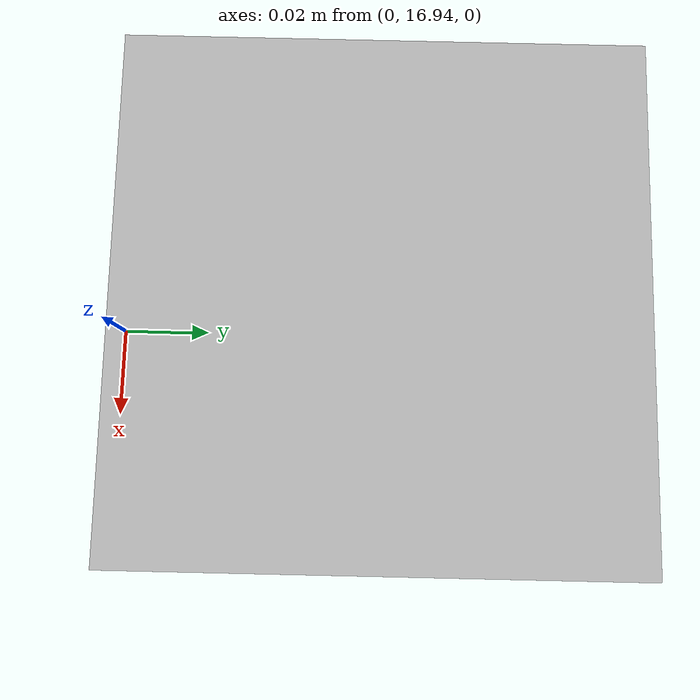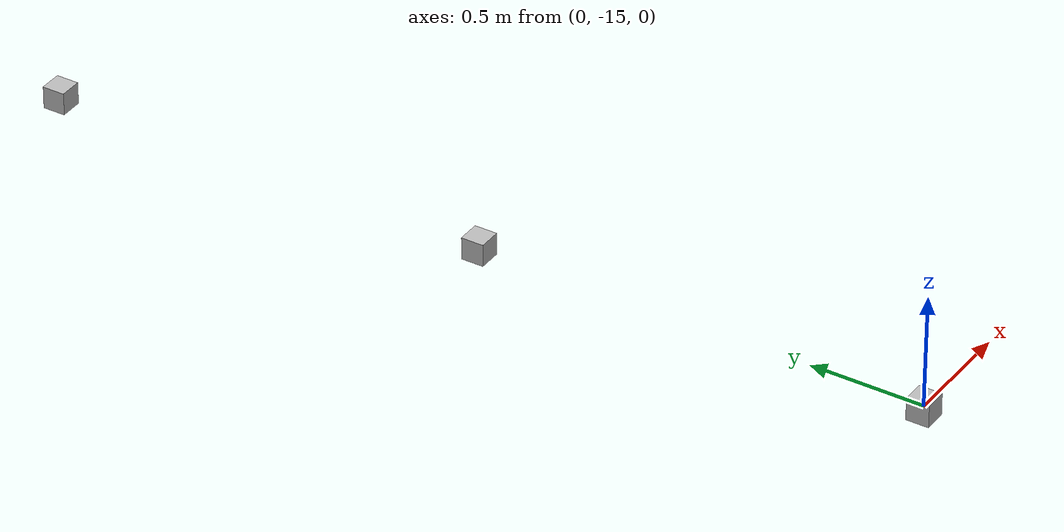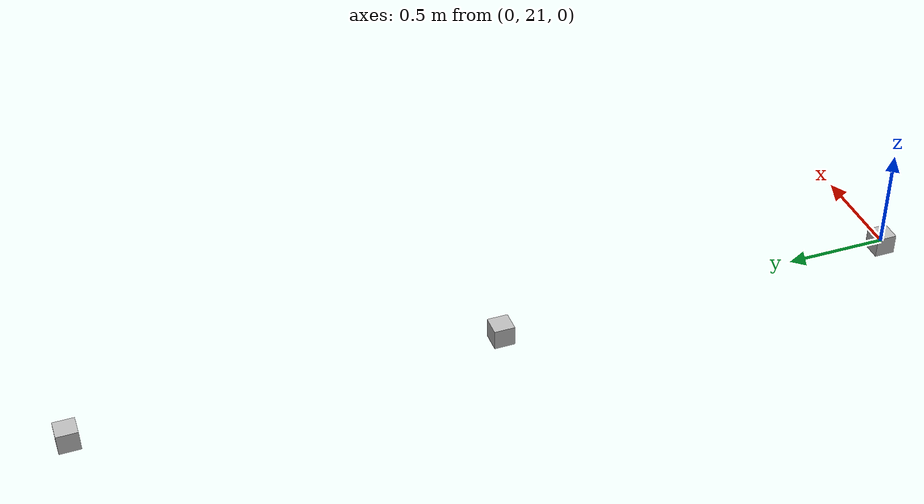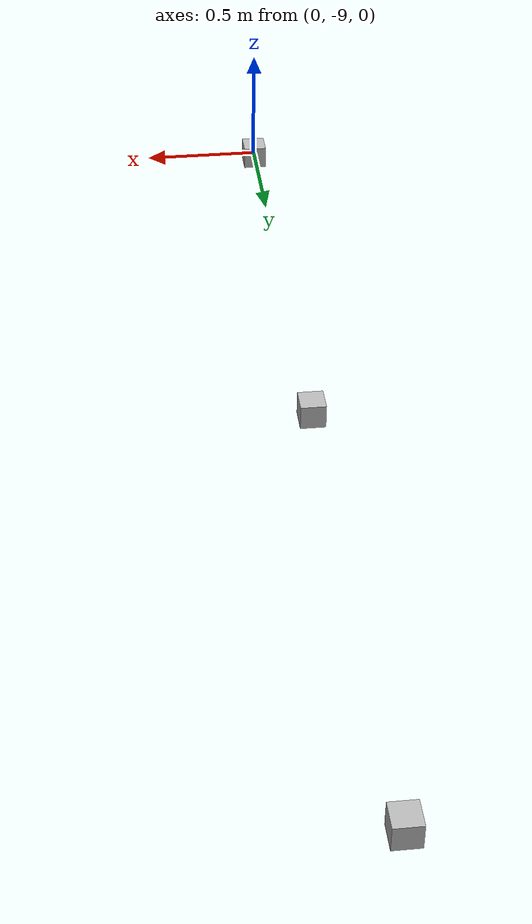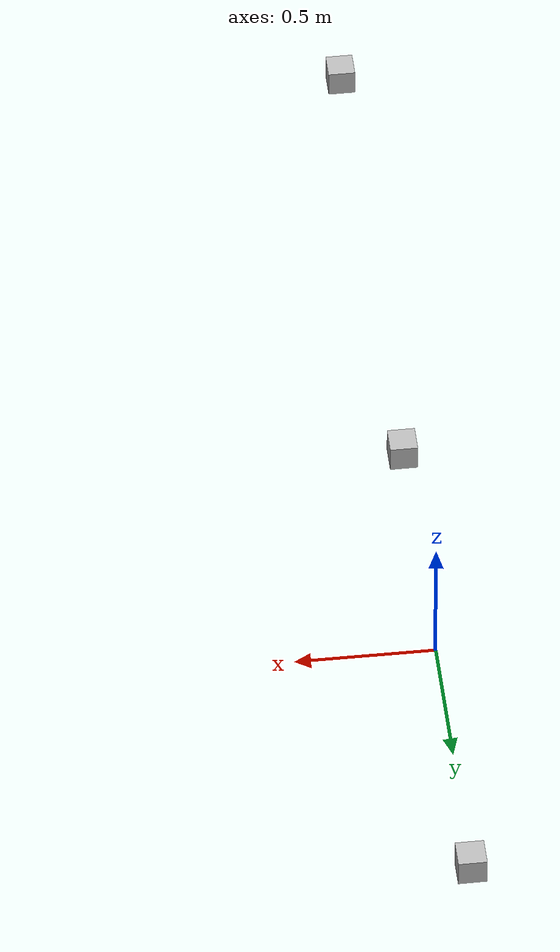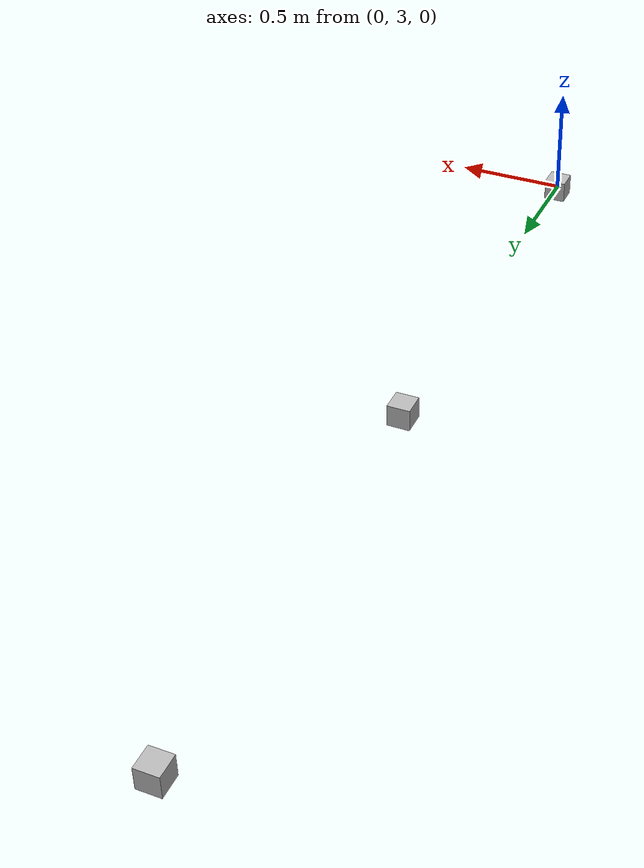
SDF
<sdf version="1.10">
 <world name="Forschungsprojekt_world">
  <physics name="default_physics" type="dart">
   <max_step_size>0.001</max_step_size>
   <real_time_factor>1</real_time_factor>
   <real_time_update_rate>1000</real_time_update_rate>
  </physics>
  <plugin filename="gz-sim-physics-system" name="gz::sim::systems::Physics"/>
  <plugin filename="gz-sim-scene-broadcaster-system" name="gz::sim::systems::SceneBroadcaster"/>
  <plugin filename="gz-sim-sensors-system" name="gz::sim::systems::Sensors">
   <render_engine>ogre2</render_engine>
  </plugin>
  <plugin filename="gz-sim-user-commands-system" name="gz::sim::systems::UserCommands"/>
  <plugin filename="gz-sim-contact-system" name="gz::sim::systems::Contact"/>
  <light type="directional" name="sun">
   <cast_shadows>0</cast_shadows>
   <pose>0 0 10 0 0 0</pose>
   <diffuse>0.8 0.8 0.8 1</diffuse>
   <specular>0.2 0.2 0.2 1</specular>
   <attenuation>
    <range>1000</range>
    <constant>0.9</constant>
    <linear>0.01</linear>
    <quadratic>0.001</quadratic>
   </attenuation>
   <direction>1  0 -0.7</direction>
  </light>
  <include><uri>model://Cube_H_white</uri><pose>0.0 -29.0 0 0 0 0</pose></include>
  <include><uri>model://Cube_H_pink</uri><pose>0.0 -27.0 0 0 0 0</pose></include>
  <include><uri>model://Cube_Hash_pink</uri><pose>0.0 -25.0 0 0 0 0</pose></include>
  <include><uri>model://Cube_plain_green</uri><pose>0.0 -23.0 0 0 0 0</pose></include>
  <include><uri>model://Cube_O_green</uri><pose>0.0 -21.0 0 0 0 0</pose></include>
  <include><uri>model://Cube_O_red</uri><pose>0.0 -19.0 0 0 0 0</pose></include>
  <include><uri>model://Cube_O_white</uri><pose>0.0 -17.0 0 0 0 0</pose></include>
  <include><uri>model://Cube_H_blue</uri><pose>0.0 -15.0 0 0 0 0</pose></include>
  <include><uri>model://Cube_O_blue</uri><pose>0.0 -13.0 0 0 0 0</pose></include>
  <include><uri>model://Cube_H_red</uri><pose>0.0 -11.0 0 0 0 0</pose></include>
  <include><uri>model://Cube_A_blue</uri><pose>0.0 -9.0 0 0 0 0</pose></include>
  <include><uri>model://Cube_H_green</uri><pose>0.0 -7.0 0 0 0 0</pose></include>
  <include><uri>model://Cube_plain_pink</uri><pose>0.0 -5.0 0 0 0 0</pose></include>
  <include><uri>model://Cube_A_red</uri><pose>0.0 -3.0 0 0 0 0</pose></include>
  <include><uri>model://Cube_A_green</uri><pose>0.0 -1.0 0 0 0 0</pose></include>
  <include><uri>model://Cube_X_white</uri><pose>0.0 1.0 0 0 0 0</pose></include>
  <include><uri>model://Cube_X_red</uri><pose>0.0 3.0 0 0 0 0</pose></include>
  <include><uri>model://Cube_Hash_green</uri><pose>0.0 5.0 0 0 0 0</pose></include>
  <include><uri>model://Cube_X_green</uri><pose>0.0 7.0 0 0 0 0</pose></include>
  <include><uri>model://Cube_A_pink</uri><pose>0.0 9.0 0 0 0 0</pose></include>
  <include><uri>model://Cube_X_pink</uri><pose>0.0 11.0 0 0 0 0</pose></include>
  <include><uri>model://Cube_plain_white</uri><pose>0.0 13.0 0 0 0 0</pose></include>
  <include><uri>model://Cube_Hash_red</uri><pose>0.0 15.0 0 0 0 0</pose></include>
  <include><uri>model://Cube_A_white</uri><pose>0.0 17.0 0 0 0 0</pose></include>
  <include><uri>model://Cube_X_blue</uri><pose>0.0 19.0 0 0 0 0</pose></include>
  <include><uri>model://Cube_plain_red</uri><pose>0.0 21.0 0 0 0 0</pose></include>
  <include><uri>model://Cube_Hash_white</uri><pose>0.0 23.0 0 0 0 0</pose></include>
  <include><uri>model://Cube_Hash_blue</uri><pose>0.0 25.0 0 0 0 0</pose></include>
  <include><uri>model://Cube_plain_blue</uri><pose>0.0 27.0 0 0 0 0</pose></include>
  <include><uri>model://Cube_O_pink</uri><pose>0.0 29.0 0 0 0 0</pose></include>
  <include><uri>model://Cylinder_H_white</uri><pose>0.0 31.0 0 0 0 0</pose></include>
  <include><uri>model://Cylinder_H_pink</uri><pose>0.0 33.0 0 0 0 0</pose></include>
  <include><uri>model://Cylinder_Hash_pink</uri><pose>0.0 35.0 0 0 0 0</pose></include>
  <include><uri>model://Cylinder_plain_green</uri><pose>0.0 37.0 0 0 0 0</pose></include>
  <include><uri>model://Cylinder_O_green</uri><pose>0.0 39.0 0 0 0 0</pose></include>
  <include><uri>model://Cylinder_O_red</uri><pose>0.0 41.0 0 0 0 0</pose></include>
  <include><uri>model://Cylinder_O_white</uri><pose>0.0 43.0 0 0 0 0</pose></include>
  <include><uri>model://Cylinder_H_blue</uri><pose>0.0 45.0 0 0 0 0</pose></include>
  <include><uri>model://Cylinder_O_blue</uri><pose>0.0 47.0 0 0 0 0</pose></include>
  <include><uri>model://Cylinder_H_red</uri><pose>0.0 49.0 0 0 0 0</pose></include>
  <include><uri>model://Cylinder_A_blue</uri><pose>0.0 51.0 0 0 0 0</pose></include>
  <include><uri>model://Cylinder_H_green</uri><pose>0.0 53.0 0 0 0 0</pose></include>
  <include><uri>model://Cylinder_plain_pink</uri><pose>0.0 55.0 0 0 0 0</pose></include>
  <include><uri>model://Cylinder_A_red</uri><pose>0.0 57.0 0 0 0 0</pose></include>
  <include><uri>model://Cylinder_A_green</uri><pose>0.0 59.0 0 0 0 0</pose></include>
  <include><uri>model://Cylinder_X_white</uri><pose>0.0 61.0 0 0 0 0</pose></include>
  <include><uri>model://Cylinder_X_red</uri><pose>0.0 63.0 0 0 0 0</pose></include>
  <include><uri>model://Cylinder_Hash_green</uri><pose>0.0 65.0 0 0 0 0</pose></include>
  <include><uri>model://Cylinder_X_green</uri><pose>0.0 67.0 0 0 0 0</pose></include>
  <include><uri>model://Cylinder_A_pink</uri><pose>0.0 69.0 0 0 0 0</pose></include>
  <include><uri>model://Cylinder_X_pink</uri><pose>0.0 71.0 0 0 0 0</pose></include>
  <include><uri>model://Cylinder_plain_white</uri><pose>0.0 73.0 0 0 0 0</pose></include>
  <include><uri>model://Cylinder_Hash_red</uri><pose>0.0 75.0 0 0 0 0</pose></include>
  <include><uri>model://Cylinder_A_white</uri><pose>0.0 77.0 0 0 0 0</pose></include>
  <include><uri>model://Cylinder_X_blue</uri><pose>0.0 79.0 0 0 0 0</pose></include>
  <include><uri>model://Cylinder_plain_red</uri><pose>0.0 81.0 0 0 0 0</pose></include>
  <include><uri>model://Cylinder_Hash_white</uri><pose>0.0 83.0 0 0 0 0</pose></include>
  <include><uri>model://Cylinder_Hash_blue</uri><pose>0.0 85.0 0 0 0 0</pose></include>
  <include><uri>model://Cylinder_plain_blue</uri><pose>0.0 87.0 0 0 0 0</pose></include>
  <include><uri>model://Cylinder_O_pink</uri><pose>0.0 89.0 0 0 0 0</pose></include>
 </world>
</sdf>

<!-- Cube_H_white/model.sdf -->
<sdf version="1.10">
  <model name="Cube_H_white">
    <static>true</static>
    <link name="link">
      <collision name="collider">
        <geometry>
          <box> <size>0.1 0.1 0.1</size> </box>
        </geometry>
      </collision>

      <pose>0 0 0.00 -3.14 0 -3.14</pose>
      <visual name="visual">
        <geometry>
          <mesh>
            <uri>model://Cube_H_white/Cube.obj</uri>
            <scale>0.05 0.05 0.05</scale>
          </mesh>
        </geometry>
      </visual>
    </link>
  </model>
</sdf>

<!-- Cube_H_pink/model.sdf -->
<sdf version="1.10">
  <model name="Cube_H_pink">
    <static>true</static>
    <link name="link">
      <collision name="collider">
        <geometry>
          <box> <size>0.1 0.1 0.1</size> </box>
        </geometry>
      </collision>

      <pose>0 0 0.00 -3.14 0 -3.14</pose>
      <visual name="visual">
        <geometry>
          <mesh>
            <uri>model://Cube_H_pink/Cube.obj</uri>
            <scale>0.05 0.05 0.05</scale>
          </mesh>
        </geometry>
      </visual>
    </link>
  </model>
</sdf>

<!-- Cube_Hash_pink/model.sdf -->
<sdf version="1.10">
  <model name="Cube_Hash_pink">
    <static>true</static>
    <link name="link">
      <collision name="collider">
        <geometry>
          <box> <size>0.1 0.1 0.1</size> </box>
        </geometry>
      </collision>

      <pose>0 0 0.00 -3.14 0 -3.14</pose>
      <visual name="visual">
        <geometry>
          <mesh>
            <uri>model://Cube_Hash_pink/Cube.obj</uri>
            <scale>0.05 0.05 0.05</scale>
          </mesh>
        </geometry>
      </visual>
    </link>
  </model>
</sdf>

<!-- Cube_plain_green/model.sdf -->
<sdf version="1.10">
  <model name="Cube_plain_green">
    <static>true</static>
    <link name="link">
      <collision name="collider">
        <geometry>
          <box> <size>0.1 0.1 0.1</size> </box>
        </geometry>
      </collision>

      <pose>0 0 0.00 -3.14 0 -3.14</pose>
      <visual name="visual">
        <geometry>
          <mesh>
            <uri>model://Cube_plain_green/Cube.obj</uri>
            <scale>0.05 0.05 0.05</scale>
          </mesh>
        </geometry>
      </visual>
    </link>
  </model>
</sdf>

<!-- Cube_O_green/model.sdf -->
<sdf version="1.10">
  <model name="Cube_O_green">
    <static>true</static>
    <link name="link">
      <collision name="collider">
        <geometry>
          <box> <size>0.1 0.1 0.1</size> </box>
        </geometry>
      </collision>

      <pose>0 0 0.00 -3.14 0 -3.14</pose>
      <visual name="visual">
        <geometry>
          <mesh>
            <uri>model://Cube_O_green/Cube.obj</uri>
            <scale>0.05 0.05 0.05</scale>
          </mesh>
        </geometry>
      </visual>
    </link>
  </model>
</sdf>

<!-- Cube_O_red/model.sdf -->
<sdf version="1.10">
  <model name="Cube_O_red">
    <static>true</static>
    <link name="link">
      <collision name="collider">
        <geometry>
          <box> <size>0.1 0.1 0.1</size> </box>
        </geometry>
      </collision>

      <pose>0 0 0.00 -3.14 0 -3.14</pose>
      <visual name="visual">
        <geometry>
          <mesh>
            <uri>model://Cube_O_red/Cube.obj</uri>
            <scale>0.05 0.05 0.05</scale>
          </mesh>
        </geometry>
      </visual>
    </link>
  </model>
</sdf>

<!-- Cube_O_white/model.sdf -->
<sdf version="1.10">
  <model name="Cube_O_white">
    <static>true</static>
    <link name="link">
      <collision name="collider">
        <geometry>
          <box> <size>0.1 0.1 0.1</size> </box>
        </geometry>
      </collision>

      <pose>0 0 0.00 -3.14 0 -3.14</pose>
      <visual name="visual">
        <geometry>
          <mesh>
            <uri>model://Cube_O_white/Cube.obj</uri>
            <scale>0.05 0.05 0.05</scale>
          </mesh>
        </geometry>
      </visual>
    </link>
  </model>
</sdf>

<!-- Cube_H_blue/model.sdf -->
<sdf version="1.10">
  <model name="Cube_H_blue">
    <static>true</static>
    <link name="link">
      <collision name="collider">
        <geometry>
          <box> <size>0.1 0.1 0.1</size> </box>
        </geometry>
      </collision>

      <pose>0 0 0.00 -3.14 0 -3.14</pose>
      <visual name="visual">
        <geometry>
          <mesh>
            <uri>model://Cube_H_blue/Cube.obj</uri>
            <scale>0.05 0.05 0.05</scale>
          </mesh>
        </geometry>
      </visual>
    </link>
  </model>
</sdf>

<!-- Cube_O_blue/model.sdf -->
<sdf version="1.10">
  <model name="Cube_O_blue">
    <static>true</static>
    <link name="link">
      <collision name="collider">
        <geometry>
          <box> <size>0.1 0.1 0.1</size> </box>
        </geometry>
      </collision>

      <pose>0 0 0.00 -3.14 0 -3.14</pose>
      <visual name="visual">
        <geometry>
          <mesh>
            <uri>model://Cube_O_blue/Cube.obj</uri>
            <scale>0.05 0.05 0.05</scale>
          </mesh>
        </geometry>
      </visual>
    </link>
  </model>
</sdf>

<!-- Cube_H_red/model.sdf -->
<sdf version="1.10">
  <model name="Cube_H_red">
    <static>true</static>
    <link name="link">
      <collision name="collider">
        <geometry>
          <box> <size>0.1 0.1 0.1</size> </box>
        </geometry>
      </collision>

      <pose>0 0 0.00 -3.14 0 -3.14</pose>
      <visual name="visual">
        <geometry>
          <mesh>
            <uri>model://Cube_H_red/Cube.obj</uri>
            <scale>0.05 0.05 0.05</scale>
          </mesh>
        </geometry>
      </visual>
    </link>
  </model>
</sdf>

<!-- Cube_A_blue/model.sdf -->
<sdf version="1.10">
  <model name="Cube_A_blue">
    <static>true</static>
    <link name="link">
      <collision name="collider">
        <geometry>
          <box> <size>0.1 0.1 0.1</size> </box>
        </geometry>
      </collision>

      <pose>0 0 0.00 -3.14 0 -3.14</pose>
      <visual name="visual">
        <geometry>
          <mesh>
            <uri>model://Cube_A_blue/Cube.obj</uri>
            <scale>0.05 0.05 0.05</scale>
          </mesh>
        </geometry>
      </visual>
    </link>
  </model>
</sdf>

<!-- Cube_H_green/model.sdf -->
<sdf version="1.10">
  <model name="Cube_H_green">
    <static>true</static>
    <link name="link">
      <collision name="collider">
        <geometry>
          <box> <size>0.1 0.1 0.1</size> </box>
        </geometry>
      </collision>

      <pose>0 0 0.00 -3.14 0 -3.14</pose>
      <visual name="visual">
        <geometry>
          <mesh>
            <uri>model://Cube_H_green/Cube.obj</uri>
            <scale>0.05 0.05 0.05</scale>
          </mesh>
        </geometry>
      </visual>
    </link>
  </model>
</sdf>

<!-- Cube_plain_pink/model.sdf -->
<sdf version="1.10">
  <model name="Cube_plain_pink">
    <static>true</static>
    <link name="link">
      <collision name="collider">
        <geometry>
          <box> <size>0.1 0.1 0.1</size> </box>
        </geometry>
      </collision>

      <pose>0 0 0.00 -3.14 0 -3.14</pose>
      <visual name="visual">
        <geometry>
          <mesh>
            <uri>model://Cube_plain_pink/Cube.obj</uri>
            <scale>0.05 0.05 0.05</scale>
          </mesh>
        </geometry>
      </visual>
    </link>
  </model>
</sdf>

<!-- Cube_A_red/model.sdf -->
<sdf version="1.10">
  <model name="Cube_A_red">
    <static>true</static>
    <link name="link">
      <collision name="collider">
        <geometry>
          <box> <size>0.1 0.1 0.1</size> </box>
        </geometry>
      </collision>

      <pose>0 0 0.00 -3.14 0 -3.14</pose>
      <visual name="visual">
        <geometry>
          <mesh>
            <uri>model://Cube_A_red/Cube.obj</uri>
            <scale>0.05 0.05 0.05</scale>
          </mesh>
        </geometry>
      </visual>
    </link>
  </model>
</sdf>

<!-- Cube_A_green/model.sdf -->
<sdf version="1.10">
  <model name="Cube_A_green">
    <static>true</static>
    <link name="link">
      <collision name="collider">
        <geometry>
          <box> <size>0.1 0.1 0.1</size> </box>
        </geometry>
      </collision>

      <pose>0 0 0.00 -3.14 0 -3.14</pose>
      <visual name="visual">
        <geometry>
          <mesh>
            <uri>model://Cube_A_green/Cube.obj</uri>
            <scale>0.05 0.05 0.05</scale>
          </mesh>
        </geometry>
      </visual>
    </link>
  </model>
</sdf>

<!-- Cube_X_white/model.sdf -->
<sdf version="1.10">
  <model name="Cube_X_white">
    <static>true</static>
    <link name="link">
      <collision name="collider">
        <geometry>
          <box> <size>0.1 0.1 0.1</size> </box>
        </geometry>
      </collision>

      <pose>0 0 0.00 -3.14 0 -3.14</pose>
      <visual name="visual">
        <geometry>
          <mesh>
            <uri>model://Cube_X_white/Cube.obj</uri>
            <scale>0.05 0.05 0.05</scale>
          </mesh>
        </geometry>
      </visual>
    </link>
  </model>
</sdf>

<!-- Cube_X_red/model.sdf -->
<sdf version="1.10">
  <model name="Cube_X_red">
    <static>true</static>
    <link name="link">
      <collision name="collider">
        <geometry>
          <box> <size>0.1 0.1 0.1</size> </box>
        </geometry>
      </collision>

      <pose>0 0 0.00 -3.14 0 -3.14</pose>
      <visual name="visual">
        <geometry>
          <mesh>
            <uri>model://Cube_X_red/Cube.obj</uri>
            <scale>0.05 0.05 0.05</scale>
          </mesh>
        </geometry>
      </visual>
    </link>
  </model>
</sdf>

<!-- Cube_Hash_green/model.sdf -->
<sdf version="1.10">
  <model name="Cube_Hash_green">
    <static>true</static>
    <link name="link">
      <collision name="collider">
        <geometry>
          <box> <size>0.1 0.1 0.1</size> </box>
        </geometry>
      </collision>

      <pose>0 0 0.00 -3.14 0 -3.14</pose>
      <visual name="visual">
        <geometry>
          <mesh>
            <uri>model://Cube_Hash_green/Cube.obj</uri>
            <scale>0.05 0.05 0.05</scale>
          </mesh>
        </geometry>
      </visual>
    </link>
  </model>
</sdf>

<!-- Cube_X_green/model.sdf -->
<sdf version="1.10">
  <model name="Cube_X_green">
    <static>true</static>
    <link name="link">
      <collision name="collider">
        <geometry>
          <box> <size>0.1 0.1 0.1</size> </box>
        </geometry>
      </collision>

      <pose>0 0 0.00 -3.14 0 -3.14</pose>
      <visual name="visual">
        <geometry>
          <mesh>
            <uri>model://Cube_X_green/Cube.obj</uri>
            <scale>0.05 0.05 0.05</scale>
          </mesh>
        </geometry>
      </visual>
    </link>
  </model>
</sdf>

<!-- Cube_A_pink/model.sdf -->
<sdf version="1.10">
  <model name="Cube_A_pink">
    <static>true</static>
    <link name="link">
      <collision name="collider">
        <geometry>
          <box> <size>0.1 0.1 0.1</size> </box>
        </geometry>
      </collision>

      <pose>0 0 0.00 -3.14 0 -3.14</pose>
      <visual name="visual">
        <geometry>
          <mesh>
            <uri>model://Cube_A_pink/Cube.obj</uri>
            <scale>0.05 0.05 0.05</scale>
          </mesh>
        </geometry>
      </visual>
    </link>
  </model>
</sdf>

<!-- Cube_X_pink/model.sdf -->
<sdf version="1.10">
  <model name="Cube_X_pink">
    <static>true</static>
    <link name="link">
      <collision name="collider">
        <geometry>
          <box> <size>0.1 0.1 0.1</size> </box>
        </geometry>
      </collision>

      <pose>0 0 0.00 -3.14 0 -3.14</pose>
      <visual name="visual">
        <geometry>
          <mesh>
            <uri>model://Cube_X_pink/Cube.obj</uri>
            <scale>0.05 0.05 0.05</scale>
          </mesh>
        </geometry>
      </visual>
    </link>
  </model>
</sdf>

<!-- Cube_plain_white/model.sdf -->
<sdf version="1.10">
  <model name="Cube_plain_white">
    <static>true</static>
    <link name="link">
      <collision name="collider">
        <geometry>
          <box> <size>0.1 0.1 0.1</size> </box>
        </geometry>
      </collision>

      <pose>0 0 0.00 -3.14 0 -3.14</pose>
      <visual name="visual">
        <geometry>
          <mesh>
            <uri>model://Cube_plain_white/Cube.obj</uri>
            <scale>0.05 0.05 0.05</scale>
          </mesh>
        </geometry>
      </visual>
    </link>
  </model>
</sdf>

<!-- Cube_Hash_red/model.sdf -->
<sdf version="1.10">
  <model name="Cube_Hash_red">
    <static>true</static>
    <link name="link">
      <collision name="collider">
        <geometry>
          <box> <size>0.1 0.1 0.1</size> </box>
        </geometry>
      </collision>

      <pose>0 0 0.00 -3.14 0 -3.14</pose>
      <visual name="visual">
        <geometry>
          <mesh>
            <uri>model://Cube_Hash_red/Cube.obj</uri>
            <scale>0.05 0.05 0.05</scale>
          </mesh>
        </geometry>
      </visual>
    </link>
  </model>
</sdf>

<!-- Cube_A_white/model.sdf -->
<sdf version="1.10">
  <model name="Cube_A_white">
    <static>true</static>
    <link name="link">
      <collision name="collider">
        <geometry>
          <box> <size>0.1 0.1 0.1</size> </box>
        </geometry>
      </collision>

      <pose>0 0 0.00 -3.14 0 -3.14</pose>
      <visual name="visual">
        <geometry>
          <mesh>
            <uri>model://Cube_A_white/Cube.obj</uri>
            <scale>0.05 0.05 0.05</scale>
          </mesh>
        </geometry>
      </visual>
    </link>
  </model>
</sdf>

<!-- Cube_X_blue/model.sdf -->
<sdf version="1.10">
  <model name="Cube_X_blue">
    <static>true</static>
    <link name="link">
      <collision name="collider">
        <geometry>
          <box> <size>0.1 0.1 0.1</size> </box>
        </geometry>
      </collision>

      <pose>0 0 0.00 -3.14 0 -3.14</pose>
      <visual name="visual">
        <geometry>
          <mesh>
            <uri>model://Cube_X_blue/Cube.obj</uri>
            <scale>0.05 0.05 0.05</scale>
          </mesh>
        </geometry>
      </visual>
    </link>
  </model>
</sdf>

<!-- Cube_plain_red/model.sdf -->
<sdf version="1.10">
  <model name="Cube_plain_red">
    <static>true</static>
    <link name="link">
      <collision name="collider">
        <geometry>
          <box> <size>0.1 0.1 0.1</size> </box>
        </geometry>
      </collision>

      <pose>0 0 0.00 -3.14 0 -3.14</pose>
      <visual name="visual">
        <geometry>
          <mesh>
            <uri>model://Cube_plain_red/Cube.obj</uri>
            <scale>0.05 0.05 0.05</scale>
          </mesh>
        </geometry>
      </visual>
    </link>
  </model>
</sdf>

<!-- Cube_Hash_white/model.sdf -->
<sdf version="1.10">
  <model name="Cube_Hash_white">
    <static>true</static>
    <link name="link">
      <collision name="collider">
        <geometry>
          <box> <size>0.1 0.1 0.1</size> </box>
        </geometry>
      </collision>

      <pose>0 0 0.00 -3.14 0 -3.14</pose>
      <visual name="visual">
        <geometry>
          <mesh>
            <uri>model://Cube_Hash_white/Cube.obj</uri>
            <scale>0.05 0.05 0.05</scale>
          </mesh>
        </geometry>
      </visual>
    </link>
  </model>
</sdf>

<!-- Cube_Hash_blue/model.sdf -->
<sdf version="1.10">
  <model name="Cube_Hash_blue">
    <static>true</static>
    <link name="link">
      <collision name="collider">
        <geometry>
          <box> <size>0.1 0.1 0.1</size> </box>
        </geometry>
      </collision>

      <pose>0 0 0.00 -3.14 0 -3.14</pose>
      <visual name="visual">
        <geometry>
          <mesh>
            <uri>model://Cube_Hash_blue/Cube.obj</uri>
            <scale>0.05 0.05 0.05</scale>
          </mesh>
        </geometry>
      </visual>
    </link>
  </model>
</sdf>

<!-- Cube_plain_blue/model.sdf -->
<sdf version="1.10">
  <model name="Cube_plain_blue">
    <static>true</static>
    <link name="link">
      <collision name="collider">
        <geometry>
          <box> <size>0.1 0.1 0.1</size> </box>
        </geometry>
      </collision>

      <pose>0 0 0.00 -3.14 0 -3.14</pose>
      <visual name="visual">
        <geometry>
          <mesh>
            <uri>model://Cube_plain_blue/Cube.obj</uri>
            <scale>0.05 0.05 0.05</scale>
          </mesh>
        </geometry>
      </visual>
    </link>
  </model>
</sdf>

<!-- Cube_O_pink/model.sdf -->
<sdf version="1.10">
  <model name="Cube_O_pink">
    <static>true</static>
    <link name="link">
      <collision name="collider">
        <geometry>
          <box> <size>0.1 0.1 0.1</size> </box>
        </geometry>
      </collision>

      <pose>0 0 0.00 -3.14 0 -3.14</pose>
      <visual name="visual">
        <geometry>
          <mesh>
            <uri>model://Cube_O_pink/Cube.obj</uri>
            <scale>0.05 0.05 0.05</scale>
          </mesh>
        </geometry>
      </visual>
    </link>
  </model>
</sdf>

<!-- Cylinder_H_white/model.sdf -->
<sdf version="1.10">
  <model name="Cylinder_H_white">
    <static>true</static>
    <link name="link">
      <collision name="collider">
        <geometry>
          <box> <size>0.1 0.1 0.1</size> </box>
        </geometry>
      </collision>

      <pose>0 0 -0.01 -1.57 0 0</pose>
      <visual name="visual">
        <geometry>
          <mesh>
            <uri>model://Cylinder_H_white/Cylinder.obj</uri>
            <scale>0.05 0.05 0.05</scale>
          </mesh>
        </geometry>
      </visual>
    </link>
  </model>
</sdf>

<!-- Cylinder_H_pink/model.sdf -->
<sdf version="1.10">
  <model name="Cylinder_H_pink">
    <static>true</static>
    <link name="link">
      <collision name="collider">
        <geometry>
          <box> <size>0.1 0.1 0.1</size> </box>
        </geometry>
      </collision>

      <pose>0 0 -0.01 -1.57 0 0</pose>
      <visual name="visual">
        <geometry>
          <mesh>
            <uri>model://Cylinder_H_pink/Cylinder.obj</uri>
            <scale>0.05 0.05 0.05</scale>
          </mesh>
        </geometry>
      </visual>
    </link>
  </model>
</sdf>

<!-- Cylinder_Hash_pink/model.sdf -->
<sdf version="1.10">
  <model name="Cylinder_Hash_pink">
    <static>true</static>
    <link name="link">
      <collision name="collider">
        <geometry>
          <box> <size>0.1 0.1 0.1</size> </box>
        </geometry>
      </collision>

      <pose>0 0 -0.01 -1.57 0 0</pose>
      <visual name="visual">
        <geometry>
          <mesh>
            <uri>model://Cylinder_Hash_pink/Cylinder.obj</uri>
            <scale>0.05 0.05 0.05</scale>
          </mesh>
        </geometry>
      </visual>
    </link>
  </model>
</sdf>

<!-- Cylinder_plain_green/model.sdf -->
<sdf version="1.10">
  <model name="Cylinder_plain_green">
    <static>true</static>
    <link name="link">
      <collision name="collider">
        <geometry>
          <box> <size>0.1 0.1 0.1</size> </box>
        </geometry>
      </collision>

      <pose>0 0 -0.01 -1.57 0 0</pose>
      <visual name="visual">
        <geometry>
          <mesh>
            <uri>model://Cylinder_plain_green/Cylinder.obj</uri>
            <scale>0.05 0.05 0.05</scale>
          </mesh>
        </geometry>
      </visual>
    </link>
  </model>
</sdf>

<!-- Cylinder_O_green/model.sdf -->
<sdf version="1.10">
  <model name="Cylinder_O_green">
    <static>true</static>
    <link name="link">
      <collision name="collider">
        <geometry>
          <box> <size>0.1 0.1 0.1</size> </box>
        </geometry>
      </collision>

      <pose>0 0 -0.01 -1.57 0 0</pose>
      <visual name="visual">
        <geometry>
          <mesh>
            <uri>model://Cylinder_O_green/Cylinder.obj</uri>
            <scale>0.05 0.05 0.05</scale>
          </mesh>
        </geometry>
      </visual>
    </link>
  </model>
</sdf>

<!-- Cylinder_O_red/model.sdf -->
<sdf version="1.10">
  <model name="Cylinder_O_red">
    <static>true</static>
    <link name="link">
      <collision name="collider">
        <geometry>
          <box> <size>0.1 0.1 0.1</size> </box>
        </geometry>
      </collision>

      <pose>0 0 -0.01 -1.57 0 0</pose>
      <visual name="visual">
        <geometry>
          <mesh>
            <uri>model://Cylinder_O_red/Cylinder.obj</uri>
            <scale>0.05 0.05 0.05</scale>
          </mesh>
        </geometry>
      </visual>
    </link>
  </model>
</sdf>

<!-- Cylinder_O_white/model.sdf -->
<sdf version="1.10">
  <model name="Cylinder_O_white">
    <static>true</static>
    <link name="link">
      <collision name="collider">
        <geometry>
          <box> <size>0.1 0.1 0.1</size> </box>
        </geometry>
      </collision>

      <pose>0 0 -0.01 -1.57 0 0</pose>
      <visual name="visual">
        <geometry>
          <mesh>
            <uri>model://Cylinder_O_white/Cylinder.obj</uri>
            <scale>0.05 0.05 0.05</scale>
          </mesh>
        </geometry>
      </visual>
    </link>
  </model>
</sdf>

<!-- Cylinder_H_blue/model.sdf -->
<sdf version="1.10">
  <model name="Cylinder_H_blue">
    <static>true</static>
    <link name="link">
      <collision name="collider">
        <geometry>
          <box> <size>0.1 0.1 0.1</size> </box>
        </geometry>
      </collision>

      <pose>0 0 -0.01 -1.57 0 0</pose>
      <visual name="visual">
        <geometry>
          <mesh>
            <uri>model://Cylinder_H_blue/Cylinder.obj</uri>
            <scale>0.05 0.05 0.05</scale>
          </mesh>
        </geometry>
      </visual>
    </link>
  </model>
</sdf>

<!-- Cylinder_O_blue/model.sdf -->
<sdf version="1.10">
  <model name="Cylinder_O_blue">
    <static>true</static>
    <link name="link">
      <collision name="collider">
        <geometry>
          <box> <size>0.1 0.1 0.1</size> </box>
        </geometry>
      </collision>

      <pose>0 0 -0.01 -1.57 0 0</pose>
      <visual name="visual">
        <geometry>
          <mesh>
            <uri>model://Cylinder_O_blue/Cylinder.obj</uri>
            <scale>0.05 0.05 0.05</scale>
          </mesh>
        </geometry>
      </visual>
    </link>
  </model>
</sdf>

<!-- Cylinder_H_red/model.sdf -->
<sdf version="1.10">
  <model name="Cylinder_H_red">
    <static>true</static>
    <link name="link">
      <collision name="collider">
        <geometry>
          <box> <size>0.1 0.1 0.1</size> </box>
        </geometry>
      </collision>

      <pose>0 0 -0.01 -1.57 0 0</pose>
      <visual name="visual">
        <geometry>
          <mesh>
            <uri>model://Cylinder_H_red/Cylinder.obj</uri>
            <scale>0.05 0.05 0.05</scale>
          </mesh>
        </geometry>
      </visual>
    </link>
  </model>
</sdf>

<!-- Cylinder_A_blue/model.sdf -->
<sdf version="1.10">
  <model name="Cylinder_A_blue">
    <static>true</static>
    <link name="link">
      <collision name="collider">
        <geometry>
          <box> <size>0.1 0.1 0.1</size> </box>
        </geometry>
      </collision>

      <pose>0 0 -0.01 -1.57 0 0</pose>
      <visual name="visual">
        <geometry>
          <mesh>
            <uri>model://Cylinder_A_blue/Cylinder.obj</uri>
            <scale>0.05 0.05 0.05</scale>
          </mesh>
        </geometry>
      </visual>
    </link>
  </model>
</sdf>

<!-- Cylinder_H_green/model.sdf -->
<sdf version="1.10">
  <model name="Cylinder_H_green">
    <static>true</static>
    <link name="link">
      <collision name="collider">
        <geometry>
          <box> <size>0.1 0.1 0.1</size> </box>
        </geometry>
      </collision>

      <pose>0 0 -0.01 -1.57 0 0</pose>
      <visual name="visual">
        <geometry>
          <mesh>
            <uri>model://Cylinder_H_green/Cylinder.obj</uri>
            <scale>0.05 0.05 0.05</scale>
          </mesh>
        </geometry>
      </visual>
    </link>
  </model>
</sdf>

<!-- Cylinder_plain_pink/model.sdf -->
<sdf version="1.10">
  <model name="Cylinder_plain_pink">
    <static>true</static>
    <link name="link">
      <collision name="collider">
        <geometry>
          <box> <size>0.1 0.1 0.1</size> </box>
        </geometry>
      </collision>

      <pose>0 0 -0.01 -1.57 0 0</pose>
      <visual name="visual">
        <geometry>
          <mesh>
            <uri>model://Cylinder_plain_pink/Cylinder.obj</uri>
            <scale>0.05 0.05 0.05</scale>
          </mesh>
        </geometry>
      </visual>
    </link>
  </model>
</sdf>

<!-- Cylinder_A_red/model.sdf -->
<sdf version="1.10">
  <model name="Cylinder_A_red">
    <static>true</static>
    <link name="link">
      <collision name="collider">
        <geometry>
          <box> <size>0.1 0.1 0.1</size> </box>
        </geometry>
      </collision>

      <pose>0 0 -0.01 -1.57 0 0</pose>
      <visual name="visual">
        <geometry>
          <mesh>
            <uri>model://Cylinder_A_red/Cylinder.obj</uri>
            <scale>0.05 0.05 0.05</scale>
          </mesh>
        </geometry>
      </visual>
    </link>
  </model>
</sdf>

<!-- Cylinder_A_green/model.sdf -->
<sdf version="1.10">
  <model name="Cylinder_A_green">
    <static>true</static>
    <link name="link">
      <collision name="collider">
        <geometry>
          <box> <size>0.1 0.1 0.1</size> </box>
        </geometry>
      </collision>

      <pose>0 0 -0.01 -1.57 0 0</pose>
      <visual name="visual">
        <geometry>
          <mesh>
            <uri>model://Cylinder_A_green/Cylinder.obj</uri>
            <scale>0.05 0.05 0.05</scale>
          </mesh>
        </geometry>
      </visual>
    </link>
  </model>
</sdf>

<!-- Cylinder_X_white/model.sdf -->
<sdf version="1.10">
  <model name="Cylinder_X_white">
    <static>true</static>
    <link name="link">
      <collision name="collider">
        <geometry>
          <box> <size>0.1 0.1 0.1</size> </box>
        </geometry>
      </collision>

      <pose>0 0 -0.01 -1.57 0 0</pose>
      <visual name="visual">
        <geometry>
          <mesh>
            <uri>model://Cylinder_X_white/Cylinder.obj</uri>
            <scale>0.05 0.05 0.05</scale>
          </mesh>
        </geometry>
      </visual>
    </link>
  </model>
</sdf>

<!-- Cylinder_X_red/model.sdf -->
<sdf version="1.10">
  <model name="Cylinder_X_red">
    <static>true</static>
    <link name="link">
      <collision name="collider">
        <geometry>
          <box> <size>0.1 0.1 0.1</size> </box>
        </geometry>
      </collision>

      <pose>0 0 -0.01 -1.57 0 0</pose>
      <visual name="visual">
        <geometry>
          <mesh>
            <uri>model://Cylinder_X_red/Cylinder.obj</uri>
            <scale>0.05 0.05 0.05</scale>
          </mesh>
        </geometry>
      </visual>
    </link>
  </model>
</sdf>

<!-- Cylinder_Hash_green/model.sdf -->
<sdf version="1.10">
  <model name="Cylinder_Hash_green">
    <static>true</static>
    <link name="link">
      <collision name="collider">
        <geometry>
          <box> <size>0.1 0.1 0.1</size> </box>
        </geometry>
      </collision>

      <pose>0 0 -0.01 -1.57 0 0</pose>
      <visual name="visual">
        <geometry>
          <mesh>
            <uri>model://Cylinder_Hash_green/Cylinder.obj</uri>
            <scale>0.05 0.05 0.05</scale>
          </mesh>
        </geometry>
      </visual>
    </link>
  </model>
</sdf>

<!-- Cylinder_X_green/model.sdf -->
<sdf version="1.10">
  <model name="Cylinder_X_green">
    <static>true</static>
    <link name="link">
      <collision name="collider">
        <geometry>
          <box> <size>0.1 0.1 0.1</size> </box>
        </geometry>
      </collision>

      <pose>0 0 -0.01 -1.57 0 0</pose>
      <visual name="visual">
        <geometry>
          <mesh>
            <uri>model://Cylinder_X_green/Cylinder.obj</uri>
            <scale>0.05 0.05 0.05</scale>
          </mesh>
        </geometry>
      </visual>
    </link>
  </model>
</sdf>

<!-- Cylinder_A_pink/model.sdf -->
<sdf version="1.10">
  <model name="Cylinder_A_pink">
    <static>true</static>
    <link name="link">
      <collision name="collider">
        <geometry>
          <box> <size>0.1 0.1 0.1</size> </box>
        </geometry>
      </collision>

      <pose>0 0 -0.01 -1.57 0 0</pose>
      <visual name="visual">
        <geometry>
          <mesh>
            <uri>model://Cylinder_A_pink/Cylinder.obj</uri>
            <scale>0.05 0.05 0.05</scale>
          </mesh>
        </geometry>
      </visual>
    </link>
  </model>
</sdf>

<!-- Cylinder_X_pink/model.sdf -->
<sdf version="1.10">
  <model name="Cylinder_X_pink">
    <static>true</static>
    <link name="link">
      <collision name="collider">
        <geometry>
          <box> <size>0.1 0.1 0.1</size> </box>
        </geometry>
      </collision>

      <pose>0 0 -0.01 -1.57 0 0</pose>
      <visual name="visual">
        <geometry>
          <mesh>
            <uri>model://Cylinder_X_pink/Cylinder.obj</uri>
            <scale>0.05 0.05 0.05</scale>
          </mesh>
        </geometry>
      </visual>
    </link>
  </model>
</sdf>

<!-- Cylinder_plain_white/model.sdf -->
<sdf version="1.10">
  <model name="Cylinder_plain_white">
    <static>true</static>
    <link name="link">
      <collision name="collider">
        <geometry>
          <box> <size>0.1 0.1 0.1</size> </box>
        </geometry>
      </collision>

      <pose>0 0 -0.01 -1.57 0 0</pose>
      <visual name="visual">
        <geometry>
          <mesh>
            <uri>model://Cylinder_plain_white/Cylinder.obj</uri>
            <scale>0.05 0.05 0.05</scale>
          </mesh>
        </geometry>
      </visual>
    </link>
  </model>
</sdf>

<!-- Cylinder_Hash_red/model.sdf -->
<sdf version="1.10">
  <model name="Cylinder_Hash_red">
    <static>true</static>
    <link name="link">
      <collision name="collider">
        <geometry>
          <box> <size>0.1 0.1 0.1</size> </box>
        </geometry>
      </collision>

      <pose>0 0 -0.01 -1.57 0 0</pose>
      <visual name="visual">
        <geometry>
          <mesh>
            <uri>model://Cylinder_Hash_red/Cylinder.obj</uri>
            <scale>0.05 0.05 0.05</scale>
          </mesh>
        </geometry>
      </visual>
    </link>
  </model>
</sdf>

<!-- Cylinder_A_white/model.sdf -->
<sdf version="1.10">
  <model name="Cylinder_A_white">
    <static>true</static>
    <link name="link">
      <collision name="collider">
        <geometry>
          <box> <size>0.1 0.1 0.1</size> </box>
        </geometry>
      </collision>

      <pose>0 0 -0.01 -1.57 0 0</pose>
      <visual name="visual">
        <geometry>
          <mesh>
            <uri>model://Cylinder_A_white/Cylinder.obj</uri>
            <scale>0.05 0.05 0.05</scale>
          </mesh>
        </geometry>
      </visual>
    </link>
  </model>
</sdf>

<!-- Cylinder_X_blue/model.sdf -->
<sdf version="1.10">
  <model name="Cylinder_X_blue">
    <static>true</static>
    <link name="link">
      <collision name="collider">
        <geometry>
          <box> <size>0.1 0.1 0.1</size> </box>
        </geometry>
      </collision>

      <pose>0 0 -0.01 -1.57 0 0</pose>
      <visual name="visual">
        <geometry>
          <mesh>
            <uri>model://Cylinder_X_blue/Cylinder.obj</uri>
            <scale>0.05 0.05 0.05</scale>
          </mesh>
        </geometry>
      </visual>
    </link>
  </model>
</sdf>

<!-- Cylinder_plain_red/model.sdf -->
<sdf version="1.10">
  <model name="Cylinder_plain_red">
    <static>true</static>
    <link name="link">
      <collision name="collider">
        <geometry>
          <box> <size>0.1 0.1 0.1</size> </box>
        </geometry>
      </collision>

      <pose>0 0 -0.01 -1.57 0 0</pose>
      <visual name="visual">
        <geometry>
          <mesh>
            <uri>model://Cylinder_plain_red/Cylinder.obj</uri>
            <scale>0.05 0.05 0.05</scale>
          </mesh>
        </geometry>
      </visual>
    </link>
  </model>
</sdf>

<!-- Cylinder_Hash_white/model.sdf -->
<sdf version="1.10">
  <model name="Cylinder_Hash_white">
    <static>true</static>
    <link name="link">
      <collision name="collider">
        <geometry>
          <box> <size>0.1 0.1 0.1</size> </box>
        </geometry>
      </collision>

      <pose>0 0 -0.01 -1.57 0 0</pose>
      <visual name="visual">
        <geometry>
          <mesh>
            <uri>model://Cylinder_Hash_white/Cylinder.obj</uri>
            <scale>0.05 0.05 0.05</scale>
          </mesh>
        </geometry>
      </visual>
    </link>
  </model>
</sdf>

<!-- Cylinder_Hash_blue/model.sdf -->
<sdf version="1.10">
  <model name="Cylinder_Hash_blue">
    <static>true</static>
    <link name="link">
      <collision name="collider">
        <geometry>
          <box> <size>0.1 0.1 0.1</size> </box>
        </geometry>
      </collision>

      <pose>0 0 -0.01 -1.57 0 0</pose>
      <visual name="visual">
        <geometry>
          <mesh>
            <uri>model://Cylinder_Hash_blue/Cylinder.obj</uri>
            <scale>0.05 0.05 0.05</scale>
          </mesh>
        </geometry>
      </visual>
    </link>
  </model>
</sdf>

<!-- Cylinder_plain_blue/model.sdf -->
<sdf version="1.10">
  <model name="Cylinder_plain_blue">
    <static>true</static>
    <link name="link">
      <collision name="collider">
        <geometry>
          <box> <size>0.1 0.1 0.1</size> </box>
        </geometry>
      </collision>

      <pose>0 0 -0.01 -1.57 0 0</pose>
      <visual name="visual">
        <geometry>
          <mesh>
            <uri>model://Cylinder_plain_blue/Cylinder.obj</uri>
            <scale>0.05 0.05 0.05</scale>
          </mesh>
        </geometry>
      </visual>
    </link>
  </model>
</sdf>

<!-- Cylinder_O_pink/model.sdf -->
<sdf version="1.10">
  <model name="Cylinder_O_pink">
    <static>true</static>
    <link name="link">
      <collision name="collider">
        <geometry>
          <box> <size>0.1 0.1 0.1</size> </box>
        </geometry>
      </collision>

      <pose>0 0 -0.01 -1.57 0 0</pose>
      <visual name="visual">
        <geometry>
          <mesh>
            <uri>model://Cylinder_O_pink/Cylinder.obj</uri>
            <scale>0.05 0.05 0.05</scale>
          </mesh>
        </geometry>
      </visual>
    </link>
  </model>
</sdf>
